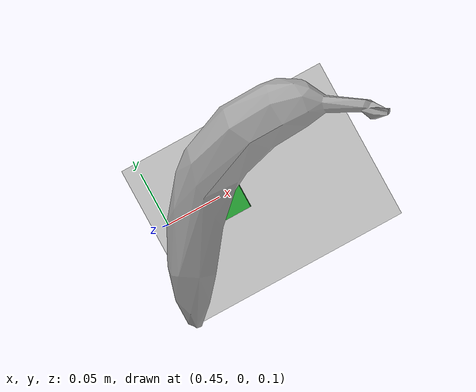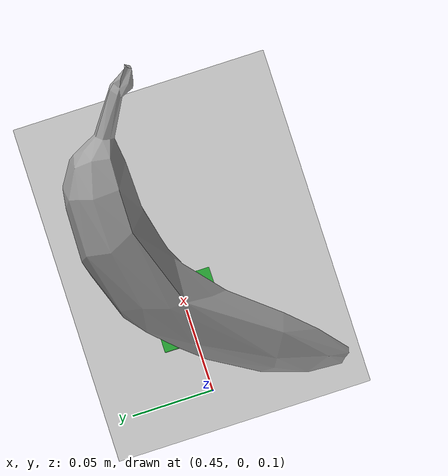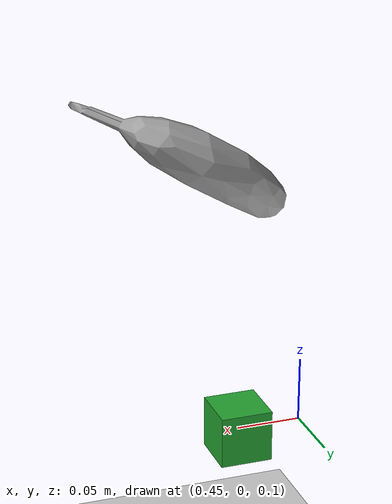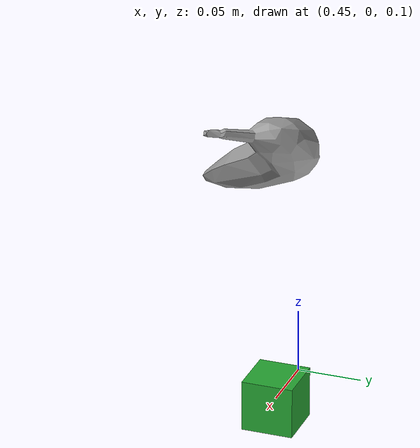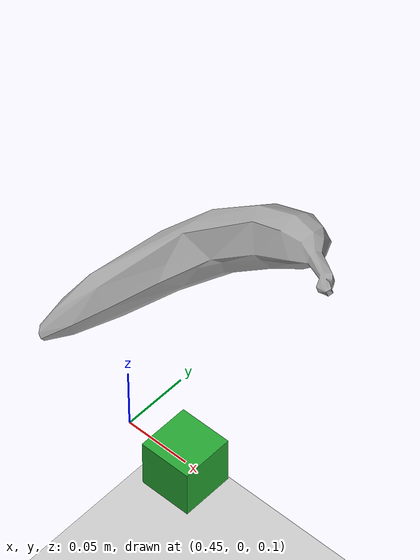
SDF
<?xml version="1.0"?>
<sdf version='1.7'>
  <world name='logical_camera_world'>

    <!-- Lighting -->
    <light name='sun' type='directional'>
      <cast_shadows>1</cast_shadows>
      <pose>0 0 10 0 -0 0</pose>
      <diffuse>0.8 0.8 0.8 1</diffuse>
      <specular>0.2 0.2 0.2 1</specular>
      <attenuation>
        <range>1000</range>
        <constant>0.9</constant>
        <linear>0.01</linear>
        <quadratic>0.001</quadratic>
      </attenuation>
      <direction>-0.5 0.1 -0.9</direction>
    </light>

    <!-- Ground Plane -->
    <model name='ground_plane'>
      <static>1</static>
      <link name='link'>
        <collision name='collision'>
          <geometry>
            <plane>
              <normal>0 0 1</normal>
              <size>100 100</size>
            </plane>
          </geometry>
          <surface>
            <friction>
              <ode>
                <mu>100</mu>
                <mu2>50</mu2>
              </ode>
            </friction>
          </surface>
        </collision>
        <visual name='visual'>
          <geometry>
            <plane>
              <normal>0 0 1</normal>
              <size>100 100</size>
            </plane>
          </geometry>
          <material>
            <script>
              <uri>file://media/materials/scripts/gazebo.material</uri>
              <name>Gazebo/Grey</name>
            </script>
          </material>
        </visual>
      </link>
    </model>

    <!-- Physics Settings -->
    <physics type='ode'>
      <gravity>0 0 -9.81</gravity>
      <max_step_size>0.001</max_step_size>
      <real_time_factor>1</real_time_factor>
      <real_time_update_rate>1000</real_time_update_rate>
    </physics>

    <!-- Scene Settings -->
    <scene>
      <ambient>0.4 0.4 0.4 1</ambient>
      <background>0.7 0.7 0.7 1</background>
      <shadows>1</shadows>
    </scene>

    <!-- Object Models -->
    <!-- Box Model -->
    <model name='box_01'>
      <pose>0.5 0 0.10 0 0 0</pose>
      <link name='link'>
        <inertial>
          <mass>0.1</mass>
          <inertia>
            <ixx>0.00004166667</ixx>
            <iyy>0.00004166667</iyy>
            <izz>0.00004166667</izz>
          </inertia>
        </inertial>
        <collision name='collision'>
          <geometry>
            <box>
              <size>0.04 0.04 0.04</size>
            </box>
          </geometry>

          <max_contacts>10</max_contacts>

          <surface>
            <contact>
              <ode>
                <max_vel>5.0</max_vel>
                <min_depth>0.001</min_depth>  <!-- meter -->
                <kp>10000</kp>                <!-- Dynamically 'stiffness'-equivalent coefficient for contact joints -->
                <kd>0</kd>                    <!-- Dynamically 'damping'-equivalent coefficient for contact joints -->
              </ode>
            </contact>

            <bounce>
              <restitution_coefficient>0.5</restitution_coefficient>  <!-- "max_vel" must be higher than 0.0 -->
              <threshold>0.01</threshold>
            </bounce>

            <friction>
              <ode>
                <mu>0.95</mu>
                <mu2>0.95</mu2>
              </ode>
            </friction>
          </surface>

        </collision>
        <visual name='visual'>
          <geometry>
            <box>
              <size>0.04 0.04 0.04</size>
            </box>
          </geometry>
          <material>
            <script>
              <name>Gazebo/Green</name>
              <uri>file://media/materials/scripts/gazebo.material</uri>
            </script>
          </material>
        </visual>
        <self_collide>0</self_collide>
        <enable_wind>0</enable_wind>
        <kinematic>0</kinematic>
      </link>
    </model>

    <!-- Banana -->
    <include>
      <uri>model://banana</uri>
      <pose> 0.5  0.0  0.2 0 0 0</pose>
    </include>

    <!-- GUI Camera Settings -->
    <gui fullscreen='0'>
      <camera name='user_camera'>
        <pose>2.00 -2.10 1.5 0 0.4 2.2</pose>
        <view_controller>orbit</view_controller>
        <projection_type>perspective</projection_type>
      </camera>
    </gui>

  </world>
</sdf>

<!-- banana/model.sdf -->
<sdf version="1.5">
	<model name="OBJECT">
		<link name="Obj_3">
			<pose>0 0 0.1 2.2 -0.296705961227417 0.01745329052209854</pose>
			<inertial>
				<mass>0.8622732758522034</mass>
				<pose>0.03477764129638672 0.0029336530715227127 0.01468808762729168 2.1619239021219983e-07 1.229939812219527e-07 -1.3813895805014909e-07</pose>
				<inertia>
					<ixx>0.010104811936616898</ixx>
					<ixy>0.0</ixy>
					<ixz>0.0</ixz>
					<iyy>0.02979417145252228</iyy>
					<iyz>0.0</iyz>
					<izz>0.022718265652656555</izz>
				</inertia>
			</inertial>
			<collision name="VIS_Obj_3_Banana_Coll">
				<pose>-0.18325240910053253 -0.042692720890045166 -0.0038590345066040754 3.054346677799913e-07 5.162897664945376e-08 -1.8141007274152798e-07</pose>
				<geometry>
					<mesh>
						<uri>model://banana/meshes/collisions/COL_Obj_3_Banana_Coll.dae</uri>
						<scale>0.11999999731779099 0.11999999731779099 0.11999999731779099</scale>
					</mesh>
				</geometry>
			</collision>
			<visual name="VIS_Obj_3_Banana">
				<pose>-0.18325240910053253 -0.042692720890045166 -0.0038590345066040754 3.054346677799913e-07 5.162897664945376e-08 -1.8141007274152798e-07</pose>
				<geometry>
					<mesh>
						<uri>model://banana/meshes/visual/VIS_Obj_3_Banana.dae</uri>
						<scale>0.11999999731779099 0.11999999731779099 0.11999999731779099</scale>
					</mesh>
				</geometry>
			</visual>
		</link>
	</model>
</sdf>
